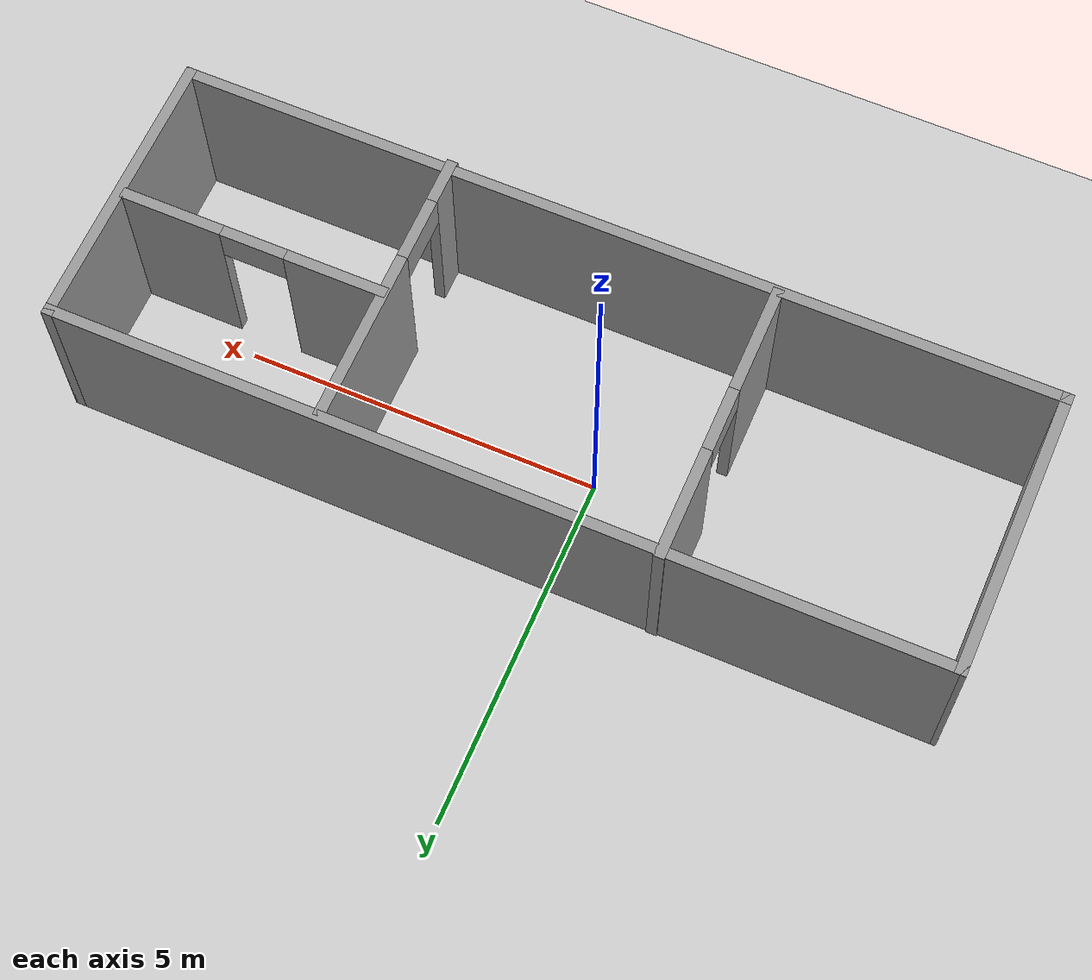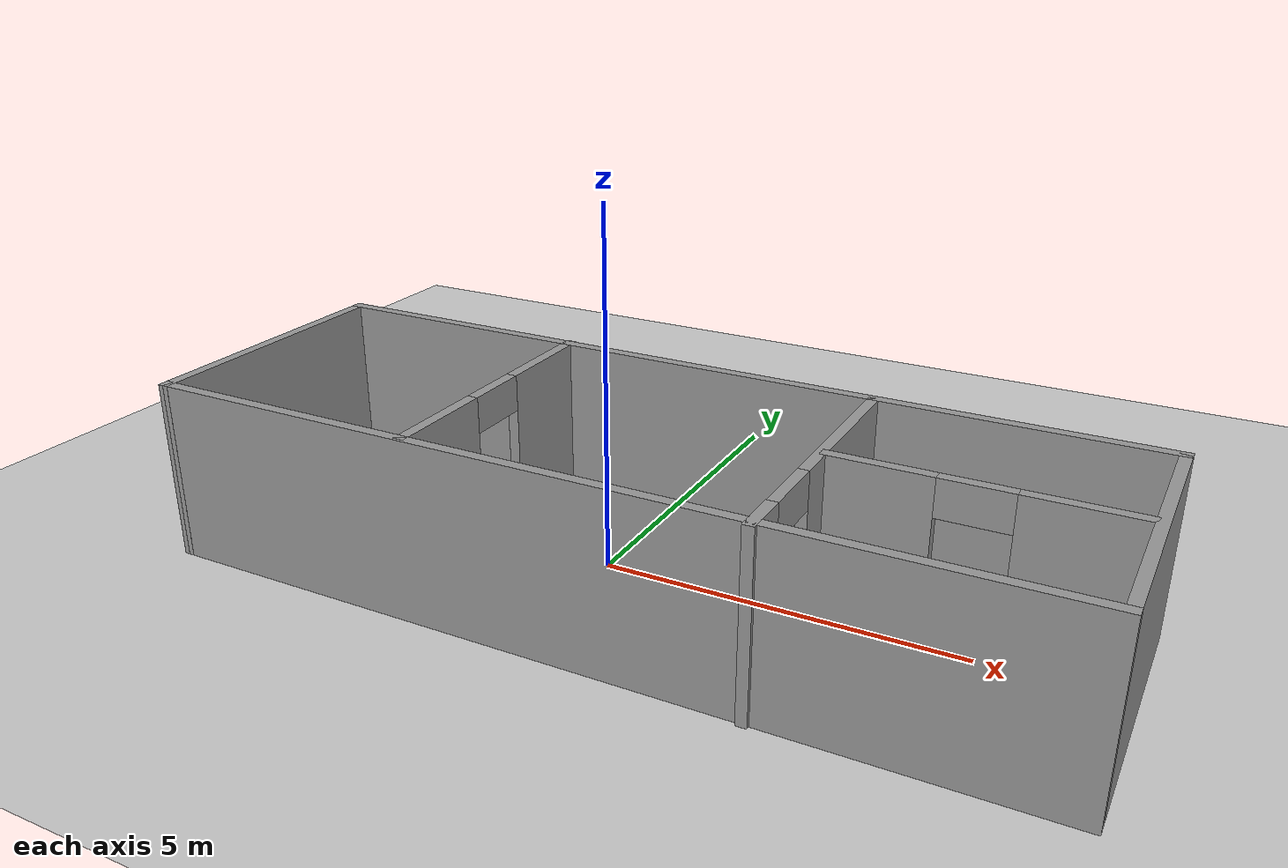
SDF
<sdf version="1.7">
 <world name="default">
  <light name="sun" type="directional">
   <pose>0 0 10 0 -0 0</pose>
   <diffuse>0.8 0.8 0.8 1</diffuse>
   <specular>0.2 0.2 0.2 1</specular>
   <attenuation>
    <range>1000</range>
    <constant>0.9</constant>
    <linear>0.01</linear>
    <quadratic>0.001</quadratic>
   </attenuation>
   <direction>-0.5 0.1 -0.9</direction>
   <spot><inner_angle>0</inner_angle><outer_angle>0</outer_angle><falloff>0</falloff></spot>
  </light>
  <model name="ground_plane">
   <static>1</static>
   <link name="link">
    <collision name="collision">
     <geometry><plane><normal>0 0 1</normal><size>100 100</size></plane></geometry>
     <surface>
      <contact><collide_bitmask>65535</collide_bitmask></contact>
      <friction><ode><mu>100</mu><mu2>50</mu2></ode></friction>
     </surface>
    </collision>
    <visual name="visual">
     <cast_shadows>0</cast_shadows>
     <geometry><plane><normal>0 0 1</normal><size>100 100</size></plane></geometry>
     <material>
      <script><uri>file://media/materials/scripts/gazebo.material</uri><name>Gazebo/Grey</name></script>
     </material>
    </visual>
   </link>
  </model>
  <gravity>0 0 -9.8</gravity>
  <magnetic_field>6e-06 2.3e-05 -4.2e-05</magnetic_field>
  <atmosphere type="adiabatic"/>
  <physics type="ode">
   <max_step_size>0.001</max_step_size>
   <real_time_factor>1</real_time_factor>
   <real_time_update_rate>1000</real_time_update_rate>
  </physics>
  <scene><ambient>0.4 0.4 0.4 1</ambient><background>0.7 0.7 0.7 1</background><shadows>1</shadows></scene>
  <audio><device>default</device></audio>
  <spherical_coordinates>
   <surface_model>EARTH_WGS84</surface_model>
   <latitude_deg>0</latitude_deg>
   <longitude_deg>0</longitude_deg>
   <elevation>0</elevation>
   <heading_deg>0</heading_deg>
  </spherical_coordinates>
  <model name="world">
   <pose>0.766513 0.080958 0 0 -0 0</pose>
   <link name="Wall_11">
    <collision name="Wall_11_Collision">
     <geometry><box><size>12.23 0.15 2.5</size></box></geometry>
     <pose>0 0 1.25 0 -0 0</pose>
    </collision>
    <visual name="Wall_11_Visual">
     <pose>0 0 1.25 0 -0 0</pose>
     <geometry><box><size>12.23 0.15 2.5</size></box></geometry>
     <material>
      <script><uri>file://media/materials/scripts/gazebo.material</uri><name>Gazebo/Grey</name></script>
      <ambient>1 1 1 1</ambient>
     </material>
     <meta><layer>0</layer></meta>
    </visual>
    <pose>0.010193 1.4275 0 0 -0 0</pose>
   </link>
   <link name="Wall_12">
    <collision name="Wall_12_Collision">
     <geometry><box><size>4.02 0.15 2.5</size></box></geometry>
     <pose>0 0 1.25 0 -0 0</pose>
    </collision>
    <visual name="Wall_12_Visual">
     <pose>0 0 1.25 0 -0 0</pose>
     <geometry><box><size>4.02 0.15 2.5</size></box></geometry>
     <material>
      <script><uri>file://media/materials/scripts/gazebo.material</uri><name>Gazebo/Grey</name></script>
      <ambient>1 1 1 1</ambient>
     </material>
     <meta><layer>0</layer></meta>
    </visual>
    <pose>6.05019 -0.5075 0 0 -0 -1.5708</pose>
   </link>
   <link name="Wall_17">
    <pose>-2.23981 -0.4775 0 0 -0 -1.5708</pose>
    <visual name="Wall_17_Visual_0">
     <pose>-1.2175 0 1.25 0 -0 0</pose>
     <geometry><box><size>1.565 0.15 2.5</size></box></geometry>
     <material>
      <script><uri>file://media/materials/scripts/gazebo.material</uri><name>Gazebo/Grey</name></script>
      <ambient>1 1 1 1</ambient>
     </material>
     <meta><layer>0</layer></meta>
    </visual>
    <collision name="Wall_17_Collision_0">
     <geometry><box><size>1.565 0.15 2.5</size></box></geometry>
     <pose>-1.2175 0 1.25 0 -0 0</pose>
    </collision>
    <visual name="Wall_17_Visual_1">
     <pose>1.2325 0 1.25 0 -0 0</pose>
     <geometry><box><size>1.535 0.15 2.5</size></box></geometry>
     <material>
      <script><uri>file://media/materials/scripts/gazebo.material</uri><name>Gazebo/Grey</name></script>
      <ambient>1 1 1 1</ambient>
     </material>
     <meta><layer>0</layer></meta>
    </visual>
    <collision name="Wall_17_Collision_1">
     <geometry><box><size>1.535 0.15 2.5</size></box></geometry>
     <pose>1.2325 0 1.25 0 -0 0</pose>
    </collision>
    <visual name="Wall_17_Visual_2">
     <pose>0.015 0 2.25 0 -0 0</pose>
     <geometry><box><size>0.9 0.15 0.5</size></box></geometry>
     <material>
      <script><uri>file://media/materials/scripts/gazebo.material</uri><name>Gazebo/Grey</name></script>
      <ambient>1 1 1 1</ambient>
     </material>
     <meta><layer>0</layer></meta>
    </visual>
    <collision name="Wall_17_Collision_2">
     <geometry><box><size>0.9 0.15 0.5</size></box></geometry>
     <pose>0.015 0 2.25 0 -0 0</pose>
    </collision>
   </link>
   <link name="Wall_19">
    <pose>2.31019 -0.5675 0 0 -0 -1.5708</pose>
    <visual name="Wall_19_Visual_0">
     <pose>-0.7725 0 1.25 0 -0 0</pose>
     <geometry><box><size>2.455 0.15 2.5</size></box></geometry>
     <material>
      <script><uri>file://media/materials/scripts/gazebo.material</uri><name>Gazebo/Grey</name></script>
      <ambient>1 1 1 1</ambient>
     </material>
     <meta><layer>0</layer></meta>
    </visual>
    <collision name="Wall_19_Collision_0">
     <geometry><box><size>2.455 0.15 2.5</size></box></geometry>
     <pose>-0.7725 0 1.25 0 -0 0</pose>
    </collision>
    <visual name="Wall_19_Visual_1">
     <pose>1.6775 0 1.25 0 -0 0</pose>
     <geometry><box><size>0.645 0.15 2.5</size></box></geometry>
     <material>
      <script><uri>file://media/materials/scripts/gazebo.material</uri><name>Gazebo/Grey</name></script>
      <ambient>1 1 1 1</ambient>
     </material>
     <meta><layer>0</layer></meta>
    </visual>
    <collision name="Wall_19_Collision_1">
     <geometry><box><size>0.645 0.15 2.5</size></box></geometry>
     <pose>1.6775 0 1.25 0 -0 0</pose>
    </collision>
    <visual name="Wall_19_Visual_2">
     <pose>0.905 0 2.25 0 -0 0</pose>
     <geometry><box><size>0.9 0.15 0.5</size></box></geometry>
     <material>
      <script><uri>file://media/materials/scripts/gazebo.material</uri><name>Gazebo/Grey</name></script>
      <ambient>1 1 1 1</ambient>
     </material>
     <meta><layer>0</layer></meta>
    </visual>
    <collision name="Wall_19_Collision_2">
     <geometry><box><size>0.9 0.15 0.5</size></box></geometry>
     <pose>0.905 0 2.25 0 -0 0</pose>
    </collision>
   </link>
   <link name="Wall_23">
    <collision name="Wall_23_Collision">
     <geometry><box><size>12.25 0.15 2.5</size></box></geometry>
     <pose>0 0 1.25 0 -0 0</pose>
    </collision>
    <visual name="Wall_23_Visual">
     <pose>0 0 1.25 0 -0 0</pose>
     <geometry><box><size>12.25 0.15 2.5</size></box></geometry>
     <material>
      <script><uri>file://media/materials/scripts/gazebo.material</uri><name>Gazebo/Grey</name></script>
      <ambient>1 1 1 1</ambient>
     </material>
     <meta><layer>0</layer></meta>
    </visual>
    <pose>0.000193 -2.4425 0 0 -0 3.14159</pose>
   </link>
   <link name="Wall_25">
    <collision name="Wall_25_Collision">
     <geometry><box><size>4.02005 0.15 2.5</size></box></geometry>
     <pose>0 0 1.25 0 -0 0</pose>
    </collision>
    <visual name="Wall_25_Visual">
     <pose>0 0 1.25 0 -0 0</pose>
     <geometry><box><size>4.02005 0.15 2.5</size></box></geometry>
     <material>
      <script><uri>file://media/materials/scripts/gazebo.material</uri><name>Gazebo/Grey</name></script>
      <ambient>1 1 1 1</ambient>
     </material>
     <meta><layer>0</layer></meta>
    </visual>
    <pose>-6.03981 -0.5075 0 0 -0 -1.57596</pose>
   </link>
   <link name="Wall_27">
    <pose>4.14019 -0.4625 0 0 -0 0</pose>
    <visual name="Wall_27_Visual_0">
     <pose>-1.1675 0 1.25 0 -0 0</pose>
     <geometry><box><size>1.415 0.15 2.5</size></box></geometry>
     <material>
      <script><uri>file://media/materials/scripts/gazebo.material</uri><name>Gazebo/Grey</name></script>
      <ambient>1 1 1 1</ambient>
     </material>
     <meta><layer>0</layer></meta>
    </visual>
    <collision name="Wall_27_Collision_0">
     <geometry><box><size>1.415 0.15 2.5</size></box></geometry>
     <pose>-1.1675 0 1.25 0 -0 0</pose>
    </collision>
    <visual name="Wall_27_Visual_1">
     <pose>1.1575 0 1.25 0 -0 0</pose>
     <geometry><box><size>1.435 0.15 2.5</size></box></geometry>
     <material>
      <script><uri>file://media/materials/scripts/gazebo.material</uri><name>Gazebo/Grey</name></script>
      <ambient>1 1 1 1</ambient>
     </material>
     <meta><layer>0</layer></meta>
    </visual>
    <collision name="Wall_27_Collision_1">
     <geometry><box><size>1.435 0.15 2.5</size></box></geometry>
     <pose>1.1575 0 1.25 0 -0 0</pose>
    </collision>
    <visual name="Wall_27_Visual_2">
     <pose>-0.01 0 2.25 0 -0 0</pose>
     <geometry><box><size>0.9 0.15 0.5</size></box></geometry>
     <material>
      <script><uri>file://media/materials/scripts/gazebo.material</uri><name>Gazebo/Grey</name></script>
      <ambient>1 1 1 1</ambient>
     </material>
     <meta><layer>0</layer></meta>
    </visual>
    <collision name="Wall_27_Collision_2">
     <geometry><box><size>0.9 0.15 0.5</size></box></geometry>
     <pose>-0.01 0 2.25 0 -0 0</pose>
    </collision>
   </link>
   <static>1</static>
  </model>
 </world>
</sdf>
